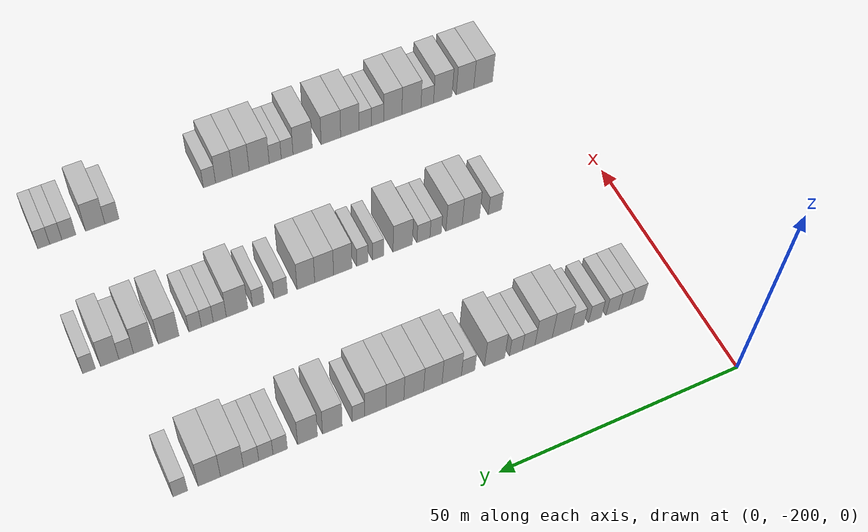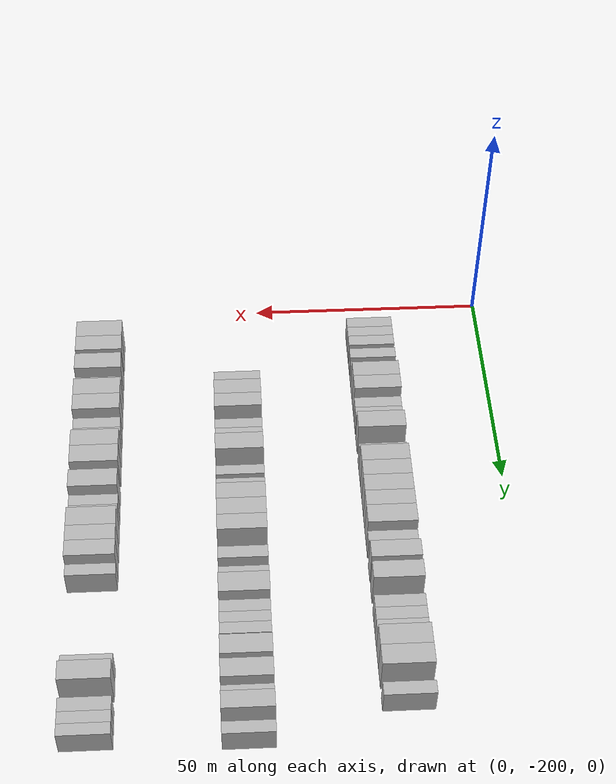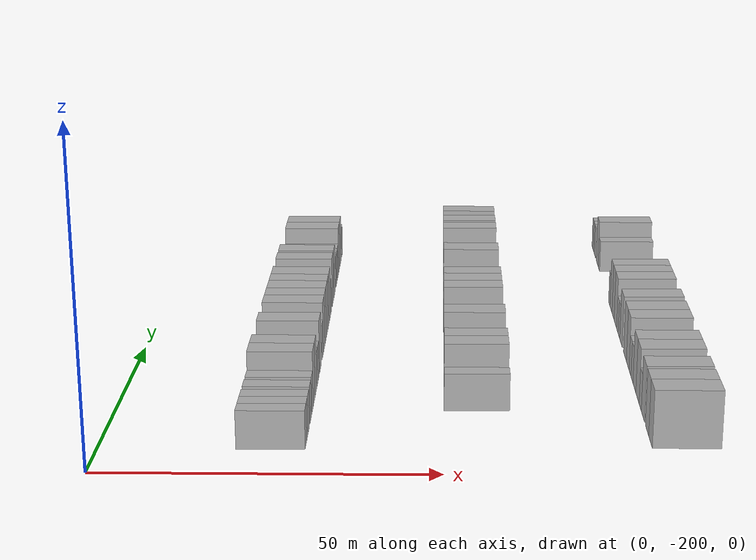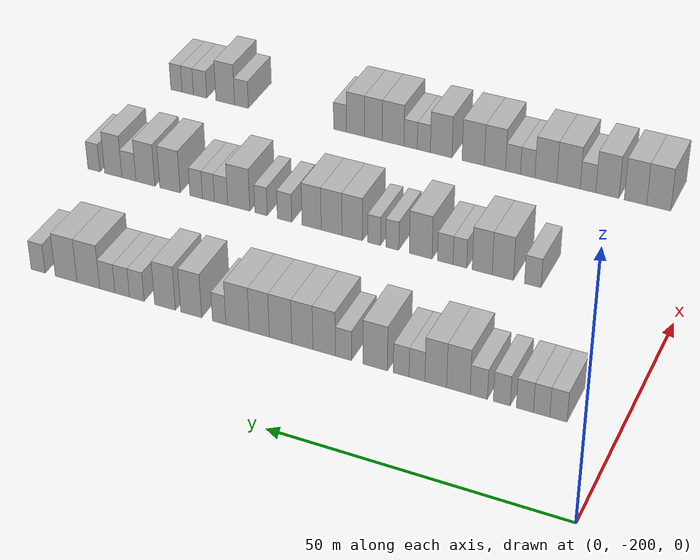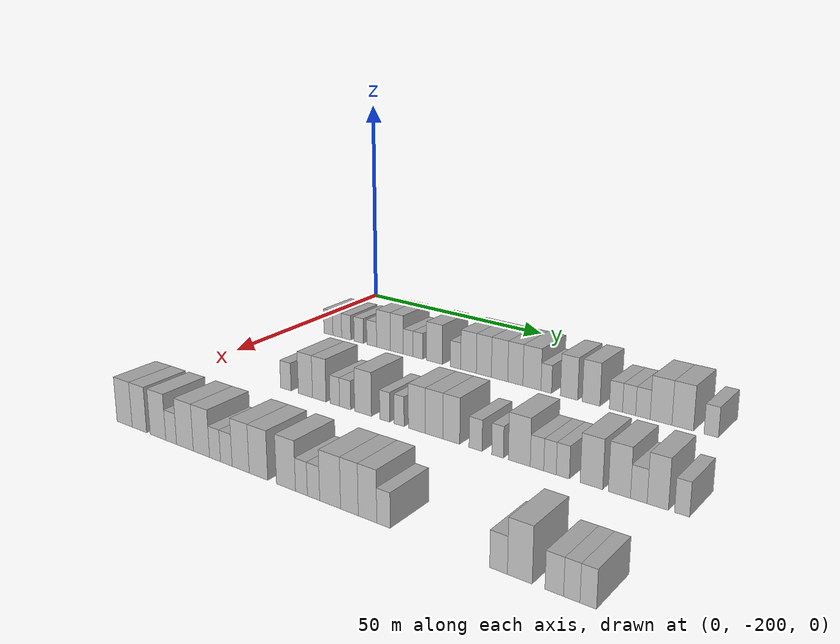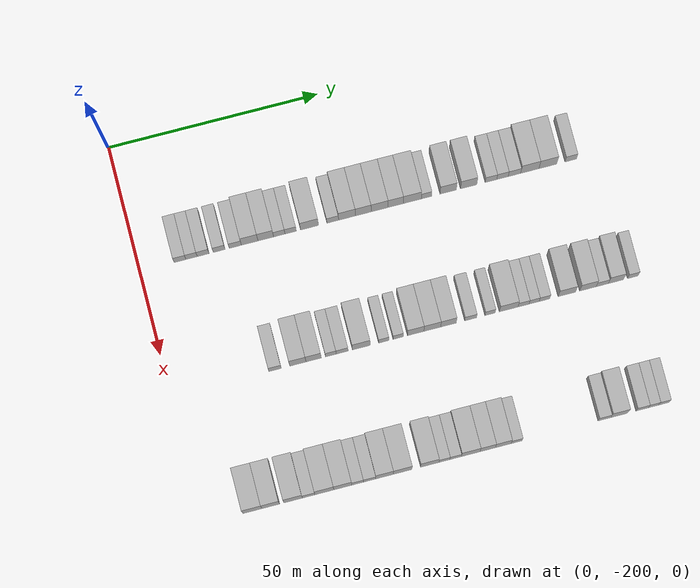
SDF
<sdf version="1.6">
 <world name="default">
  <model name="building_25">
   <static>1</static>
   <pose>25.0000 -190.3567 0 0.000000 0.000000 0.000000</pose>
   <link name="link">
    <pose>0 0 3.00 0 0 0</pose>
    <collision name="collision"><geometry><box><size>10.0000 2.8083 6.0000</size></box></geometry></collision>
    <visual name="visual">
     <cast_shadows>0</cast_shadows>
     <geometry><box><size>10.0000 2.8083 6.0000</size></box></geometry>
     <material>
      <script>
       <uri>model://HANNAS_wall/materials/scripts</uri>
       <uri>model://HANNAS_wall/materials/textures</uri>
       <name>vrc/HANNAS_wall</name>
      </script>
     </material>
    </visual>
   </link>
  </model>
  <model name="building_26">
   <static>1</static>
   <pose>25.0000 -187.6123 0 0.000000 0.000000 0.000000</pose>
   <link name="link">
    <pose>0 0 3.00 0 0 0</pose>
    <collision name="collision"><geometry><box><size>10.0000 2.6805 6.0000</size></box></geometry></collision>
    <visual name="visual">
     <cast_shadows>0</cast_shadows>
     <geometry><box><size>10.0000 2.6805 6.0000</size></box></geometry>
     <material>
      <script>
       <uri>model://HANNAS_wall/materials/scripts</uri>
       <uri>model://HANNAS_wall/materials/textures</uri>
       <name>vrc/HANNAS_wall</name>
      </script>
     </material>
    </visual>
   </link>
  </model>
  <model name="building_27">
   <static>1</static>
   <pose>25.0000 -184.8709 0 0.000000 0.000000 0.000000</pose>
   <link name="link">
    <pose>0 0 3.00 0 0 0</pose>
    <collision name="collision"><geometry><box><size>10.0000 2.8024 6.0000</size></box></geometry></collision>
    <visual name="visual">
     <cast_shadows>0</cast_shadows>
     <geometry><box><size>10.0000 2.8024 6.0000</size></box></geometry>
     <material>
      <script>
       <uri>model://HANNAS_wall/materials/scripts</uri>
       <uri>model://HANNAS_wall/materials/textures</uri>
       <name>vrc/HANNAS_wall</name>
      </script>
     </material>
    </visual>
   </link>
  </model>
  <model name="building_28">
   <static>1</static>
   <pose>25.0000 -181.0701 0 0.000000 0.000000 0.000000</pose>
   <link name="link">
    <pose>0 0 3.00 0 0 0</pose>
    <collision name="collision"><geometry><box><size>10.0000 2.7993 6.0000</size></box></geometry></collision>
    <visual name="visual">
     <cast_shadows>0</cast_shadows>
     <geometry><box><size>10.0000 2.7993 6.0000</size></box></geometry>
     <material>
      <script>
       <uri>model://HANNAS_wall/materials/scripts</uri>
       <uri>model://HANNAS_wall/materials/textures</uri>
       <name>vrc/HANNAS_wall</name>
      </script>
     </material>
    </visual>
   </link>
  </model>
  <model name="building_29">
   <static>1</static>
   <pose>25.0000 -177.2287 0 0.000000 0.000000 0.000000</pose>
   <link name="link">
    <pose>0 0 3.00 0 0 0</pose>
    <collision name="collision"><geometry><box><size>10.0000 2.8834 6.0000</size></box></geometry></collision>
    <visual name="visual">
     <cast_shadows>0</cast_shadows>
     <geometry><box><size>10.0000 2.8834 6.0000</size></box></geometry>
     <material>
      <script>
       <uri>model://HANNAS_wall/materials/scripts</uri>
       <uri>model://HANNAS_wall/materials/textures</uri>
       <name>vrc/HANNAS_wall</name>
      </script>
     </material>
    </visual>
   </link>
  </model>
  <model name="building_30">
   <static>1</static>
   <pose>25.0000 -173.8132 0 0.000000 0.000000 0.000000</pose>
   <link name="link">
    <pose>0 0 4.50 0 0 0</pose>
    <collision name="collision"><geometry><box><size>10.0000 3.9477 9.0000</size></box></geometry></collision>
    <visual name="visual">
     <cast_shadows>0</cast_shadows>
     <geometry><box><size>10.0000 3.9477 9.0000</size></box></geometry>
     <material>
      <script>
       <uri>model://HANNAS_wall/materials/scripts</uri>
       <uri>model://HANNAS_wall/materials/textures</uri>
       <name>vrc/HANNAS_wall</name>
      </script>
     </material>
    </visual>
   </link>
  </model>
  <model name="building_31">
   <static>1</static>
   <pose>25.0000 -169.9897 0 0.000000 0.000000 0.000000</pose>
   <link name="link">
    <pose>0 0 4.50 0 0 0</pose>
    <collision name="collision"><geometry><box><size>10.0000 3.6992 9.0000</size></box></geometry></collision>
    <visual name="visual">
     <cast_shadows>0</cast_shadows>
     <geometry><box><size>10.0000 3.6992 9.0000</size></box></geometry>
     <material>
      <script>
       <uri>model://HANNAS_wall/materials/scripts</uri>
       <uri>model://HANNAS_wall/materials/textures</uri>
       <name>vrc/HANNAS_wall</name>
      </script>
     </material>
    </visual>
   </link>
  </model>
  <model name="building_32">
   <static>1</static>
   <pose>25.0000 -166.7838 0 0.000000 0.000000 0.000000</pose>
   <link name="link">
    <pose>0 0 3.00 0 0 0</pose>
    <collision name="collision"><geometry><box><size>10.0000 2.7128 6.0000</size></box></geometry></collision>
    <visual name="visual">
     <cast_shadows>0</cast_shadows>
     <geometry><box><size>10.0000 2.7128 6.0000</size></box></geometry>
     <material>
      <script>
       <uri>model://HANNAS_wall/materials/scripts</uri>
       <uri>model://HANNAS_wall/materials/textures</uri>
       <name>vrc/HANNAS_wall</name>
      </script>
     </material>
    </visual>
   </link>
  </model>
  <model name="building_33">
   <static>1</static>
   <pose>25.0000 -164.0759 0 0.000000 0.000000 0.000000</pose>
   <link name="link">
    <pose>0 0 3.00 0 0 0</pose>
    <collision name="collision"><geometry><box><size>10.0000 2.7030 6.0000</size></box></geometry></collision>
    <visual name="visual">
     <cast_shadows>0</cast_shadows>
     <geometry><box><size>10.0000 2.7030 6.0000</size></box></geometry>
     <material>
      <script>
       <uri>model://HANNAS_wall/materials/scripts</uri>
       <uri>model://HANNAS_wall/materials/textures</uri>
       <name>vrc/HANNAS_wall</name>
      </script>
     </material>
    </visual>
   </link>
  </model>
  <model name="building_34">
   <static>1</static>
   <pose>25.0000 -159.5859 0 0.000000 0.000000 0.000000</pose>
   <link name="link">
    <pose>0 0 4.50 0 0 0</pose>
    <collision name="collision"><geometry><box><size>10.0000 4.2769 9.0000</size></box></geometry></collision>
    <visual name="visual">
     <cast_shadows>0</cast_shadows>
     <geometry><box><size>10.0000 4.2769 9.0000</size></box></geometry>
     <material>
      <script>
       <uri>model://HANNAS_wall/materials/scripts</uri>
       <uri>model://HANNAS_wall/materials/textures</uri>
       <name>vrc/HANNAS_wall</name>
      </script>
     </material>
    </visual>
   </link>
  </model>
  <model name="building_35">
   <static>1</static>
   <pose>25.0000 -154.0492 0 0.000000 0.000000 0.000000</pose>
   <link name="link">
    <pose>0 0 3.00 0 0 0</pose>
    <collision name="collision"><geometry><box><size>10.0000 2.7965 6.0000</size></box></geometry></collision>
    <visual name="visual">
     <cast_shadows>0</cast_shadows>
     <geometry><box><size>10.0000 2.7965 6.0000</size></box></geometry>
     <material>
      <script>
       <uri>model://HANNAS_wall/materials/scripts</uri>
       <uri>model://HANNAS_wall/materials/textures</uri>
       <name>vrc/HANNAS_wall</name>
      </script>
     </material>
    </visual>
   </link>
  </model>
  <model name="building_36">
   <static>1</static>
   <pose>25.0000 -150.6507 0 0.000000 0.000000 0.000000</pose>
   <link name="link">
    <pose>0 0 4.50 0 0 0</pose>
    <collision name="collision"><geometry><box><size>10.0000 4.0004 9.0000</size></box></geometry></collision>
    <visual name="visual">
     <cast_shadows>0</cast_shadows>
     <geometry><box><size>10.0000 4.0004 9.0000</size></box></geometry>
     <material>
      <script>
       <uri>model://HANNAS_wall/materials/scripts</uri>
       <uri>model://HANNAS_wall/materials/textures</uri>
       <name>vrc/HANNAS_wall</name>
      </script>
     </material>
    </visual>
   </link>
  </model>
  <model name="building_37">
   <static>1</static>
   <pose>25.0000 -146.7634 0 0.000000 0.000000 0.000000</pose>
   <link name="link">
    <pose>0 0 4.50 0 0 0</pose>
    <collision name="collision"><geometry><box><size>10.0000 3.7743 9.0000</size></box></geometry></collision>
    <visual name="visual">
     <cast_shadows>0</cast_shadows>
     <geometry><box><size>10.0000 3.7743 9.0000</size></box></geometry>
     <material>
      <script>
       <uri>model://HANNAS_wall/materials/scripts</uri>
       <uri>model://HANNAS_wall/materials/textures</uri>
       <name>vrc/HANNAS_wall</name>
      </script>
     </material>
    </visual>
   </link>
  </model>
  <model name="building_38">
   <static>1</static>
   <pose>25.0000 -142.8606 0 0.000000 0.000000 0.000000</pose>
   <link name="link">
    <pose>0 0 4.50 0 0 0</pose>
    <collision name="collision"><geometry><box><size>10.0000 4.0314 9.0000</size></box></geometry></collision>
    <visual name="visual">
     <cast_shadows>0</cast_shadows>
     <geometry><box><size>10.0000 4.0314 9.0000</size></box></geometry>
     <material>
      <script>
       <uri>model://HANNAS_wall/materials/scripts</uri>
       <uri>model://HANNAS_wall/materials/textures</uri>
       <name>vrc/HANNAS_wall</name>
      </script>
     </material>
    </visual>
   </link>
  </model>
  <model name="building_39">
   <static>1</static>
   <pose>25.0000 -139.0250 0 0.000000 0.000000 0.000000</pose>
   <link name="link">
    <pose>0 0 4.50 0 0 0</pose>
    <collision name="collision"><geometry><box><size>10.0000 3.6398 9.0000</size></box></geometry></collision>
    <visual name="visual">
     <cast_shadows>0</cast_shadows>
     <geometry><box><size>10.0000 3.6398 9.0000</size></box></geometry>
     <material>
      <script>
       <uri>model://HANNAS_wall/materials/scripts</uri>
       <uri>model://HANNAS_wall/materials/textures</uri>
       <name>vrc/HANNAS_wall</name>
      </script>
     </material>
    </visual>
   </link>
  </model>
  <model name="building_40">
   <static>1</static>
   <pose>25.0000 -135.0623 0 0.000000 0.000000 0.000000</pose>
   <link name="link">
    <pose>0 0 4.50 0 0 0</pose>
    <collision name="collision"><geometry><box><size>10.0000 4.2854 9.0000</size></box></geometry></collision>
    <visual name="visual">
     <cast_shadows>0</cast_shadows>
     <geometry><box><size>10.0000 4.2854 9.0000</size></box></geometry>
     <material>
      <script>
       <uri>model://HANNAS_wall/materials/scripts</uri>
       <uri>model://HANNAS_wall/materials/textures</uri>
       <name>vrc/HANNAS_wall</name>
      </script>
     </material>
    </visual>
   </link>
  </model>
  <model name="building_41">
   <static>1</static>
   <pose>25.0000 -131.6870 0 0.000000 0.000000 0.000000</pose>
   <link name="link">
    <pose>0 0 3.00 0 0 0</pose>
    <collision name="collision"><geometry><box><size>10.0000 2.4652 6.0000</size></box></geometry></collision>
    <visual name="visual">
     <cast_shadows>0</cast_shadows>
     <geometry><box><size>10.0000 2.4652 6.0000</size></box></geometry>
     <material>
      <script>
       <uri>model://HANNAS_wall/materials/scripts</uri>
       <uri>model://HANNAS_wall/materials/textures</uri>
       <name>vrc/HANNAS_wall</name>
      </script>
     </material>
    </visual>
   </link>
  </model>
  <model name="building_42">
   <static>1</static>
   <pose>25.0000 -126.5060 0 0.000000 0.000000 0.000000</pose>
   <link name="link">
    <pose>0 0 4.50 0 0 0</pose>
    <collision name="collision"><geometry><box><size>10.0000 3.8968 9.0000</size></box></geometry></collision>
    <visual name="visual">
     <cast_shadows>0</cast_shadows>
     <geometry><box><size>10.0000 3.8968 9.0000</size></box></geometry>
     <material>
      <script>
       <uri>model://HANNAS_wall/materials/scripts</uri>
       <uri>model://HANNAS_wall/materials/textures</uri>
       <name>vrc/HANNAS_wall</name>
      </script>
     </material>
    </visual>
   </link>
  </model>
  <model name="building_43">
   <static>1</static>
   <pose>25.0000 -121.6081 0 0.000000 0.000000 0.000000</pose>
   <link name="link">
    <pose>0 0 4.50 0 0 0</pose>
    <collision name="collision"><geometry><box><size>10.0000 3.8990 9.0000</size></box></geometry></collision>
    <visual name="visual">
     <cast_shadows>0</cast_shadows>
     <geometry><box><size>10.0000 3.8990 9.0000</size></box></geometry>
     <material>
      <script>
       <uri>model://HANNAS_wall/materials/scripts</uri>
       <uri>model://HANNAS_wall/materials/textures</uri>
       <name>vrc/HANNAS_wall</name>
      </script>
     </material>
    </visual>
   </link>
  </model>
  <model name="building_44">
   <static>1</static>
   <pose>25.0000 -116.2674 0 0.000000 0.000000 0.000000</pose>
   <link name="link">
    <pose>0 0 3.00 0 0 0</pose>
    <collision name="collision"><geometry><box><size>10.0000 2.7825 6.0000</size></box></geometry></collision>
    <visual name="visual">
     <cast_shadows>0</cast_shadows>
     <geometry><box><size>10.0000 2.7825 6.0000</size></box></geometry>
     <material>
      <script>
       <uri>model://HANNAS_wall/materials/scripts</uri>
       <uri>model://HANNAS_wall/materials/textures</uri>
       <name>vrc/HANNAS_wall</name>
      </script>
     </material>
    </visual>
   </link>
  </model>
  <model name="building_45">
   <static>1</static>
   <pose>25.0000 -113.4976 0 0.000000 0.000000 0.000000</pose>
   <link name="link">
    <pose>0 0 3.00 0 0 0</pose>
    <collision name="collision"><geometry><box><size>10.0000 2.7571 6.0000</size></box></geometry></collision>
    <visual name="visual">
     <cast_shadows>0</cast_shadows>
     <geometry><box><size>10.0000 2.7571 6.0000</size></box></geometry>
     <material>
      <script>
       <uri>model://HANNAS_wall/materials/scripts</uri>
       <uri>model://HANNAS_wall/materials/textures</uri>
       <name>vrc/HANNAS_wall</name>
      </script>
     </material>
    </visual>
   </link>
  </model>
  <model name="building_46">
   <static>1</static>
   <pose>25.0000 -110.6346 0 0.000000 0.000000 0.000000</pose>
   <link name="link">
    <pose>0 0 3.00 0 0 0</pose>
    <collision name="collision"><geometry><box><size>10.0000 2.9691 6.0000</size></box></geometry></collision>
    <visual name="visual">
     <cast_shadows>0</cast_shadows>
     <geometry><box><size>10.0000 2.9691 6.0000</size></box></geometry>
     <material>
      <script>
       <uri>model://HANNAS_wall/materials/scripts</uri>
       <uri>model://HANNAS_wall/materials/textures</uri>
       <name>vrc/HANNAS_wall</name>
      </script>
     </material>
    </visual>
   </link>
  </model>
  <model name="building_47">
   <static>1</static>
   <pose>25.0000 -106.9624 0 0.000000 0.000000 0.000000</pose>
   <link name="link">
    <pose>0 0 4.50 0 0 0</pose>
    <collision name="collision"><geometry><box><size>10.0000 4.3752 9.0000</size></box></geometry></collision>
    <visual name="visual">
     <cast_shadows>0</cast_shadows>
     <geometry><box><size>10.0000 4.3752 9.0000</size></box></geometry>
     <material>
      <script>
       <uri>model://HANNAS_wall/materials/scripts</uri>
       <uri>model://HANNAS_wall/materials/textures</uri>
       <name>vrc/HANNAS_wall</name>
      </script>
     </material>
    </visual>
   </link>
  </model>
  <model name="building_48">
   <static>1</static>
   <pose>25.0000 -102.6520 0 0.000000 0.000000 0.000000</pose>
   <link name="link">
    <pose>0 0 4.50 0 0 0</pose>
    <collision name="collision"><geometry><box><size>10.0000 4.2457 9.0000</size></box></geometry></collision>
    <visual name="visual">
     <cast_shadows>0</cast_shadows>
     <geometry><box><size>10.0000 4.2457 9.0000</size></box></geometry>
     <material>
      <script>
       <uri>model://HANNAS_wall/materials/scripts</uri>
       <uri>model://HANNAS_wall/materials/textures</uri>
       <name>vrc/HANNAS_wall</name>
      </script>
     </material>
    </visual>
   </link>
  </model>
  <model name="building_49">
   <static>1</static>
   <pose>25.0000 -97.1509 0 0.000000 0.000000 0.000000</pose>
   <link name="link">
    <pose>0 0 3.00 0 0 0</pose>
    <collision name="collision"><geometry><box><size>10.0000 2.7563 6.0000</size></box></geometry></collision>
    <visual name="visual">
     <cast_shadows>0</cast_shadows>
     <geometry><box><size>10.0000 2.7563 6.0000</size></box></geometry>
     <material>
      <script>
       <uri>model://HANNAS_wall/materials/scripts</uri>
       <uri>model://HANNAS_wall/materials/textures</uri>
       <name>vrc/HANNAS_wall</name>
      </script>
     </material>
    </visual>
   </link>
  </model>
  <model name="building_160">
   <static>1</static>
   <pose>55.0000 -175.4236 0 0.000000 0.000000 0.000000</pose>
   <link name="link">
    <pose>0 0 3.00 0 0 0</pose>
    <collision name="collision"><geometry><box><size>10.0000 2.9397 6.0000</size></box></geometry></collision>
    <visual name="visual">
     <cast_shadows>0</cast_shadows>
     <geometry><box><size>10.0000 2.9397 6.0000</size></box></geometry>
     <material>
      <script>
       <uri>model://HANNAS_wall/materials/scripts</uri>
       <uri>model://HANNAS_wall/materials/textures</uri>
       <name>vrc/HANNAS_wall</name>
      </script>
     </material>
    </visual>
   </link>
  </model>
  <model name="building_161">
   <static>1</static>
   <pose>55.0000 -170.0332 0 0.000000 0.000000 0.000000</pose>
   <link name="link">
    <pose>0 0 4.50 0 0 0</pose>
    <collision name="collision"><geometry><box><size>10.0000 3.8410 9.0000</size></box></geometry></collision>
    <visual name="visual">
     <cast_shadows>0</cast_shadows>
     <geometry><box><size>10.0000 3.8410 9.0000</size></box></geometry>
     <material>
      <script>
       <uri>model://HANNAS_wall/materials/scripts</uri>
       <uri>model://HANNAS_wall/materials/textures</uri>
       <name>vrc/HANNAS_wall</name>
      </script>
     </material>
    </visual>
   </link>
  </model>
  <model name="building_162">
   <static>1</static>
   <pose>55.0000 -166.3080 0 0.000000 0.000000 0.000000</pose>
   <link name="link">
    <pose>0 0 4.50 0 0 0</pose>
    <collision name="collision"><geometry><box><size>10.0000 3.6096 9.0000</size></box></geometry></collision>
    <visual name="visual">
     <cast_shadows>0</cast_shadows>
     <geometry><box><size>10.0000 3.6096 9.0000</size></box></geometry>
     <material>
      <script>
       <uri>model://HANNAS_wall/materials/scripts</uri>
       <uri>model://HANNAS_wall/materials/textures</uri>
       <name>vrc/HANNAS_wall</name>
      </script>
     </material>
    </visual>
   </link>
  </model>
  <model name="building_163">
   <static>1</static>
   <pose>55.0000 -162.2483 0 0.000000 0.000000 0.000000</pose>
   <link name="link">
    <pose>0 0 3.00 0 0 0</pose>
    <collision name="collision"><geometry><box><size>10.0000 2.5097 6.0000</size></box></geometry></collision>
    <visual name="visual">
     <cast_shadows>0</cast_shadows>
     <geometry><box><size>10.0000 2.5097 6.0000</size></box></geometry>
     <material>
      <script>
       <uri>model://HANNAS_wall/materials/scripts</uri>
       <uri>model://HANNAS_wall/materials/textures</uri>
       <name>vrc/HANNAS_wall</name>
      </script>
     </material>
    </visual>
   </link>
  </model>
  <model name="building_164">
   <static>1</static>
   <pose>55.0000 -159.5669 0 0.000000 0.000000 0.000000</pose>
   <link name="link">
    <pose>0 0 3.00 0 0 0</pose>
    <collision name="collision"><geometry><box><size>10.0000 2.8532 6.0000</size></box></geometry></collision>
    <visual name="visual">
     <cast_shadows>0</cast_shadows>
     <geometry><box><size>10.0000 2.8532 6.0000</size></box></geometry>
     <material>
      <script>
       <uri>model://HANNAS_wall/materials/scripts</uri>
       <uri>model://HANNAS_wall/materials/textures</uri>
       <name>vrc/HANNAS_wall</name>
      </script>
     </material>
    </visual>
   </link>
  </model>
  <model name="building_165">
   <static>1</static>
   <pose>55.0000 -155.0360 0 0.000000 0.000000 0.000000</pose>
   <link name="link">
    <pose>0 0 4.50 0 0 0</pose>
    <collision name="collision"><geometry><box><size>10.0000 4.2085 9.0000</size></box></geometry></collision>
    <visual name="visual">
     <cast_shadows>0</cast_shadows>
     <geometry><box><size>10.0000 4.2085 9.0000</size></box></geometry>
     <material>
      <script>
       <uri>model://HANNAS_wall/materials/scripts</uri>
       <uri>model://HANNAS_wall/materials/textures</uri>
       <name>vrc/HANNAS_wall</name>
      </script>
     </material>
    </visual>
   </link>
  </model>
  <model name="building_166">
   <static>1</static>
   <pose>55.0000 -149.7213 0 0.000000 0.000000 0.000000</pose>
   <link name="link">
    <pose>0 0 3.00 0 0 0</pose>
    <collision name="collision"><geometry><box><size>10.0000 2.4207 6.0000</size></box></geometry></collision>
    <visual name="visual">
     <cast_shadows>0</cast_shadows>
     <geometry><box><size>10.0000 2.4207 6.0000</size></box></geometry>
     <material>
      <script>
       <uri>model://HANNAS_wall/materials/scripts</uri>
       <uri>model://HANNAS_wall/materials/textures</uri>
       <name>vrc/HANNAS_wall</name>
      </script>
     </material>
    </visual>
   </link>
  </model>
  <model name="building_167">
   <static>1</static>
   <pose>55.0000 -146.3064 0 0.000000 0.000000 0.000000</pose>
   <link name="link">
    <pose>0 0 3.00 0 0 0</pose>
    <collision name="collision"><geometry><box><size>10.0000 2.4092 6.0000</size></box></geometry></collision>
    <visual name="visual">
     <cast_shadows>0</cast_shadows>
     <geometry><box><size>10.0000 2.4092 6.0000</size></box></geometry>
     <material>
      <script>
       <uri>model://HANNAS_wall/materials/scripts</uri>
       <uri>model://HANNAS_wall/materials/textures</uri>
       <name>vrc/HANNAS_wall</name>
      </script>
     </material>
    </visual>
   </link>
  </model>
  <model name="building_168">
   <static>1</static>
   <pose>55.0000 -142.1560 0 0.000000 0.000000 0.000000</pose>
   <link name="link">
    <pose>0 0 4.50 0 0 0</pose>
    <collision name="collision"><geometry><box><size>10.0000 3.8915 9.0000</size></box></geometry></collision>
    <visual name="visual">
     <cast_shadows>0</cast_shadows>
     <geometry><box><size>10.0000 3.8915 9.0000</size></box></geometry>
     <material>
      <script>
       <uri>model://HANNAS_wall/materials/scripts</uri>
       <uri>model://HANNAS_wall/materials/textures</uri>
       <name>vrc/HANNAS_wall</name>
      </script>
     </material>
    </visual>
   </link>
  </model>
  <model name="building_169">
   <static>1</static>
   <pose>55.0000 -138.2155 0 0.000000 0.000000 0.000000</pose>
   <link name="link">
    <pose>0 0 4.50 0 0 0</pose>
    <collision name="collision"><geometry><box><size>10.0000 3.9896 9.0000</size></box></geometry></collision>
    <visual name="visual">
     <cast_shadows>0</cast_shadows>
     <geometry><box><size>10.0000 3.9896 9.0000</size></box></geometry>
     <material>
      <script>
       <uri>model://HANNAS_wall/materials/scripts</uri>
       <uri>model://HANNAS_wall/materials/textures</uri>
       <name>vrc/HANNAS_wall</name>
      </script>
     </material>
    </visual>
   </link>
  </model>
  <model name="building_170">
   <static>1</static>
   <pose>55.0000 -134.3683 0 0.000000 0.000000 0.000000</pose>
   <link name="link">
    <pose>0 0 4.50 0 0 0</pose>
    <collision name="collision"><geometry><box><size>10.0000 3.7047 9.0000</size></box></geometry></collision>
    <visual name="visual">
     <cast_shadows>0</cast_shadows>
     <geometry><box><size>10.0000 3.7047 9.0000</size></box></geometry>
     <material>
      <script>
       <uri>model://HANNAS_wall/materials/scripts</uri>
       <uri>model://HANNAS_wall/materials/textures</uri>
       <name>vrc/HANNAS_wall</name>
      </script>
     </material>
    </visual>
   </link>
  </model>
  <model name="building_171">
   <static>1</static>
   <pose>55.0000 -129.1114 0 0.000000 0.000000 0.000000</pose>
   <link name="link">
    <pose>0 0 3.00 0 0 0</pose>
    <collision name="collision"><geometry><box><size>10.0000 2.8091 6.0000</size></box></geometry></collision>
    <visual name="visual">
     <cast_shadows>0</cast_shadows>
     <geometry><box><size>10.0000 2.8091 6.0000</size></box></geometry>
     <material>
      <script>
       <uri>model://HANNAS_wall/materials/scripts</uri>
       <uri>model://HANNAS_wall/materials/textures</uri>
       <name>vrc/HANNAS_wall</name>
      </script>
     </material>
    </visual>
   </link>
  </model>
  <model name="building_172">
   <static>1</static>
   <pose>55.0000 -124.4983 0 0.000000 0.000000 0.000000</pose>
   <link name="link">
    <pose>0 0 3.00 0 0 0</pose>
    <collision name="collision"><geometry><box><size>10.0000 2.4172 6.0000</size></box></geometry></collision>
    <visual name="visual">
     <cast_shadows>0</cast_shadows>
     <geometry><box><size>10.0000 2.4172 6.0000</size></box></geometry>
     <material>
      <script>
       <uri>model://HANNAS_wall/materials/scripts</uri>
       <uri>model://HANNAS_wall/materials/textures</uri>
       <name>vrc/HANNAS_wall</name>
      </script>
     </material>
    </visual>
   </link>
  </model>
  <model name="building_173">
   <static>1</static>
   <pose>55.0000 -120.0864 0 0.000000 0.000000 0.000000</pose>
   <link name="link">
    <pose>0 0 4.50 0 0 0</pose>
    <collision name="collision"><geometry><box><size>10.0000 4.4064 9.0000</size></box></geometry></collision>
    <visual name="visual">
     <cast_shadows>0</cast_shadows>
     <geometry><box><size>10.0000 4.4064 9.0000</size></box></geometry>
     <material>
      <script>
       <uri>model://HANNAS_wall/materials/scripts</uri>
       <uri>model://HANNAS_wall/materials/textures</uri>
       <name>vrc/HANNAS_wall</name>
      </script>
     </material>
    </visual>
   </link>
  </model>
  <model name="building_174">
   <static>1</static>
   <pose>55.0000 -116.5551 0 0.000000 0.000000 0.000000</pose>
   <link name="link">
    <pose>0 0 3.00 0 0 0</pose>
    <collision name="collision"><geometry><box><size>10.0000 2.6562 6.0000</size></box></geometry></collision>
    <visual name="visual">
     <cast_shadows>0</cast_shadows>
     <geometry><box><size>10.0000 2.6562 6.0000</size></box></geometry>
     <material>
      <script>
       <uri>model://HANNAS_wall/materials/scripts</uri>
       <uri>model://HANNAS_wall/materials/textures</uri>
       <name>vrc/HANNAS_wall</name>
      </script>
     </material>
    </visual>
   </link>
  </model>
  <model name="building_175">
   <static>1</static>
   <pose>55.0000 -114.0263 0 0.000000 0.000000 0.000000</pose>
   <link name="link">
    <pose>0 0 3.00 0 0 0</pose>
    <collision name="collision"><geometry><box><size>10.0000 2.4014 6.0000</size></box></geometry></collision>
    <visual name="visual">
     <cast_shadows>0</cast_shadows>
     <geometry><box><size>10.0000 2.4014 6.0000</size></box></geometry>
     <material>
      <script>
       <uri>model://HANNAS_wall/materials/scripts</uri>
       <uri>model://HANNAS_wall/materials/textures</uri>
       <name>vrc/HANNAS_wall</name>
      </script>
     </material>
    </visual>
   </link>
  </model>
  <model name="building_176">
   <static>1</static>
   <pose>55.0000 -111.5644 0 0.000000 0.000000 0.000000</pose>
   <link name="link">
    <pose>0 0 3.00 0 0 0</pose>
    <collision name="collision"><geometry><box><size>10.0000 2.5225 6.0000</size></box></geometry></collision>
    <visual name="visual">
     <cast_shadows>0</cast_shadows>
     <geometry><box><size>10.0000 2.5225 6.0000</size></box></geometry>
     <material>
      <script>
       <uri>model://HANNAS_wall/materials/scripts</uri>
       <uri>model://HANNAS_wall/materials/textures</uri>
       <name>vrc/HANNAS_wall</name>
      </script>
     </material>
    </visual>
   </link>
  </model>
  <model name="building_177">
   <static>1</static>
   <pose>55.0000 -106.2310 0 0.000000 0.000000 0.000000</pose>
   <link name="link">
    <pose>0 0 4.50 0 0 0</pose>
    <collision name="collision"><geometry><box><size>10.0000 4.1442 9.0000</size></box></geometry></collision>
    <visual name="visual">
     <cast_shadows>0</cast_shadows>
     <geometry><box><size>10.0000 4.1442 9.0000</size></box></geometry>
     <material>
      <script>
       <uri>model://HANNAS_wall/materials/scripts</uri>
       <uri>model://HANNAS_wall/materials/textures</uri>
       <name>vrc/HANNAS_wall</name>
      </script>
     </material>
    </visual>
   </link>
  </model>
  <model name="building_178">
   <static>1</static>
   <pose>55.0000 -101.1964 0 0.000000 0.000000 0.000000</pose>
   <link name="link">
    <pose>0 0 4.50 0 0 0</pose>
    <collision name="collision"><geometry><box><size>10.0000 3.9252 9.0000</size></box></geometry></collision>
    <visual name="visual">
     <cast_shadows>0</cast_shadows>
     <geometry><box><size>10.0000 3.9252 9.0000</size></box></geometry>
     <material>
      <script>
       <uri>model://HANNAS_wall/materials/scripts</uri>
       <uri>model://HANNAS_wall/materials/textures</uri>
       <name>vrc/HANNAS_wall</name>
      </script>
     </material>
    </visual>
   </link>
  </model>
  <model name="building_179">
   <static>1</static>
   <pose>55.0000 -97.7887 0 0.000000 0.000000 0.000000</pose>
   <link name="link">
    <pose>0 0 3.00 0 0 0</pose>
    <collision name="collision"><geometry><box><size>10.0000 2.8900 6.0000</size></box></geometry></collision>
    <visual name="visual">
     <cast_shadows>0</cast_shadows>
     <geometry><box><size>10.0000 2.8900 6.0000</size></box></geometry>
     <material>
      <script>
       <uri>model://HANNAS_wall/materials/scripts</uri>
       <uri>model://HANNAS_wall/materials/textures</uri>
       <name>vrc/HANNAS_wall</name>
      </script>
     </material>
    </visual>
   </link>
  </model>
  <model name="building_180">
   <static>1</static>
   <pose>55.0000 -94.5414 0 0.000000 0.000000 0.000000</pose>
   <link name="link">
    <pose>0 0 4.50 0 0 0</pose>
    <collision name="collision"><geometry><box><size>10.0000 3.6046 9.0000</size></box></geometry></collision>
    <visual name="visual">
     <cast_shadows>0</cast_shadows>
     <geometry><box><size>10.0000 3.6046 9.0000</size></box></geometry>
     <material>
      <script>
       <uri>model://HANNAS_wall/materials/scripts</uri>
       <uri>model://HANNAS_wall/materials/textures</uri>
       <name>vrc/HANNAS_wall</name>
      </script>
     </material>
    </visual>
   </link>
  </model>
  <model name="building_181">
   <static>1</static>
   <pose>55.0000 -90.4893 0 0.000000 0.000000 0.000000</pose>
   <link name="link">
    <pose>0 0 3.00 0 0 0</pose>
    <collision name="collision"><geometry><box><size>10.0000 2.4996 6.0000</size></box></geometry></collision>
    <visual name="visual">
     <cast_shadows>0</cast_shadows>
     <geometry><box><size>10.0000 2.4996 6.0000</size></box></geometry>
     <material>
      <script>
       <uri>model://HANNAS_wall/materials/scripts</uri>
       <uri>model://HANNAS_wall/materials/textures</uri>
       <name>vrc/HANNAS_wall</name>
      </script>
     </material>
    </visual>
   </link>
  </model>
  <model name="building_293">
   <static>1</static>
   <pose>85.0000 -188.3627 0 0.000000 0.000000 0.000000</pose>
   <link name="link">
    <pose>0 0 4.50 0 0 0</pose>
    <collision name="collision"><geometry><box><size>10.0000 4.4483 9.0000</size></box></geometry></collision>
    <visual name="visual">
     <cast_shadows>0</cast_shadows>
     <geometry><box><size>10.0000 4.4483 9.0000</size></box></geometry>
     <material>
      <script>
       <uri>model://HANNAS_wall/materials/scripts</uri>
       <uri>model://HANNAS_wall/materials/textures</uri>
       <name>vrc/HANNAS_wall</name>
      </script>
     </material>
    </visual>
   </link>
  </model>
  <model name="building_294">
   <static>1</static>
   <pose>85.0000 -184.0647 0 0.000000 0.000000 0.000000</pose>
   <link name="link">
    <pose>0 0 4.50 0 0 0</pose>
    <collision name="collision"><geometry><box><size>10.0000 4.1478 9.0000</size></box></geometry></collision>
    <visual name="visual">
     <cast_shadows>0</cast_shadows>
     <geometry><box><size>10.0000 4.1478 9.0000</size></box></geometry>
     <material>
      <script>
       <uri>model://HANNAS_wall/materials/scripts</uri>
       <uri>model://HANNAS_wall/materials/textures</uri>
       <name>vrc/HANNAS_wall</name>
      </script>
     </material>
    </visual>
   </link>
  </model>
  <model name="building_295">
   <static>1</static>
   <pose>85.0000 -178.8186 0 0.000000 0.000000 0.000000</pose>
   <link name="link">
    <pose>0 0 4.50 0 0 0</pose>
    <collision name="collision"><geometry><box><size>10.0000 4.3444 9.0000</size></box></geometry></collision>
    <visual name="visual">
     <cast_shadows>0</cast_shadows>
     <geometry><box><size>10.0000 4.3444 9.0000</size></box></geometry>
     <material>
      <script>
       <uri>model://HANNAS_wall/materials/scripts</uri>
       <uri>model://HANNAS_wall/materials/textures</uri>
       <name>vrc/HANNAS_wall</name>
      </script>
     </material>
    </visual>
   </link>
  </model>
  <model name="building_296">
   <static>1</static>
   <pose>85.0000 -175.1774 0 0.000000 0.000000 0.000000</pose>
   <link name="link">
    <pose>0 0 3.00 0 0 0</pose>
    <collision name="collision"><geometry><box><size>10.0000 2.9380 6.0000</size></box></geometry></collision>
    <visual name="visual">
     <cast_shadows>0</cast_shadows>
     <geometry><box><size>10.0000 2.9380 6.0000</size></box></geometry>
     <material>
      <script>
       <uri>model://HANNAS_wall/materials/scripts</uri>
       <uri>model://HANNAS_wall/materials/textures</uri>
       <name>vrc/HANNAS_wall</name>
      </script>
     </material>
    </visual>
   </link>
  </model>
  <model name="building_297">
   <static>1</static>
   <pose>85.0000 -171.4843 0 0.000000 0.000000 0.000000</pose>
   <link name="link">
    <pose>0 0 4.50 0 0 0</pose>
    <collision name="collision"><geometry><box><size>10.0000 4.4482 9.0000</size></box></geometry></collision>
    <visual name="visual">
     <cast_shadows>0</cast_shadows>
     <geometry><box><size>10.0000 4.4482 9.0000</size></box></geometry>
     <material>
      <script>
       <uri>model://HANNAS_wall/materials/scripts</uri>
       <uri>model://HANNAS_wall/materials/textures</uri>
       <name>vrc/HANNAS_wall</name>
      </script>
     </material>
    </visual>
   </link>
  </model>
  <model name="building_298">
   <static>1</static>
   <pose>85.0000 -167.1594 0 0.000000 0.000000 0.000000</pose>
   <link name="link">
    <pose>0 0 4.50 0 0 0</pose>
    <collision name="collision"><geometry><box><size>10.0000 4.2015 9.0000</size></box></geometry></collision>
    <visual name="visual">
     <cast_shadows>0</cast_shadows>
     <geometry><box><size>10.0000 4.2015 9.0000</size></box></geometry>
     <material>
      <script>
       <uri>model://HANNAS_wall/materials/scripts</uri>
       <uri>model://HANNAS_wall/materials/textures</uri>
       <name>vrc/HANNAS_wall</name>
      </script>
     </material>
    </visual>
   </link>
  </model>
  <model name="building_299">
   <static>1</static>
   <pose>85.0000 -163.6729 0 0.000000 0.000000 0.000000</pose>
   <link name="link">
    <pose>0 0 3.00 0 0 0</pose>
    <collision name="collision"><geometry><box><size>10.0000 2.7717 6.0000</size></box></geometry></collision>
    <visual name="visual">
     <cast_shadows>0</cast_shadows>
     <geometry><box><size>10.0000 2.7717 6.0000</size></box></geometry>
     <material>
      <script>
       <uri>model://HANNAS_wall/materials/scripts</uri>
       <uri>model://HANNAS_wall/materials/textures</uri>
       <name>vrc/HANNAS_wall</name>
      </script>
     </material>
    </visual>
   </link>
  </model>
  <model name="building_300">
   <static>1</static>
   <pose>85.0000 -160.8455 0 0.000000 0.000000 0.000000</pose>
   <link name="link">
    <pose>0 0 3.00 0 0 0</pose>
    <collision name="collision"><geometry><box><size>10.0000 2.8830 6.0000</size></box></geometry></collision>
    <visual name="visual">
     <cast_shadows>0</cast_shadows>
     <geometry><box><size>10.0000 2.8830 6.0000</size></box></geometry>
     <material>
      <script>
       <uri>model://HANNAS_wall/materials/scripts</uri>
       <uri>model://HANNAS_wall/materials/textures</uri>
       <name>vrc/HANNAS_wall</name>
      </script>
     </material>
    </visual>
   </link>
  </model>
  <model name="building_301">
   <static>1</static>
   <pose>85.0000 -157.3336 0 0.000000 0.000000 0.000000</pose>
   <link name="link">
    <pose>0 0 4.50 0 0 0</pose>
    <collision name="collision"><geometry><box><size>10.0000 4.1409 9.0000</size></box></geometry></collision>
    <visual name="visual">
     <cast_shadows>0</cast_shadows>
     <geometry><box><size>10.0000 4.1409 9.0000</size></box></geometry>
     <material>
      <script>
       <uri>model://HANNAS_wall/materials/scripts</uri>
       <uri>model://HANNAS_wall/materials/textures</uri>
       <name>vrc/HANNAS_wall</name>
      </script>
     </material>
    </visual>
   </link>
  </model>
  <model name="building_302">
   <static>1</static>
   <pose>85.0000 -153.0706 0 0.000000 0.000000 0.000000</pose>
   <link name="link">
    <pose>0 0 4.50 0 0 0</pose>
    <collision name="collision"><geometry><box><size>10.0000 4.3851 9.0000</size></box></geometry></collision>
    <visual name="visual">
     <cast_shadows>0</cast_shadows>
     <geometry><box><size>10.0000 4.3851 9.0000</size></box></geometry>
     <material>
      <script>
       <uri>model://HANNAS_wall/materials/scripts</uri>
       <uri>model://HANNAS_wall/materials/textures</uri>
       <name>vrc/HANNAS_wall</name>
      </script>
     </material>
    </visual>
   </link>
  </model>
  <model name="building_303">
   <static>1</static>
   <pose>85.0000 -146.7262 0 0.000000 0.000000 0.000000</pose>
   <link name="link">
    <pose>0 0 4.50 0 0 0</pose>
    <collision name="collision"><geometry><box><size>10.0000 4.3036 9.0000</size></box></geometry></collision>
    <visual name="visual">
     <cast_shadows>0</cast_shadows>
     <geometry><box><size>10.0000 4.3036 9.0000</size></box></geometry>
     <material>
      <script>
       <uri>model://HANNAS_wall/materials/scripts</uri>
       <uri>model://HANNAS_wall/materials/textures</uri>
       <name>vrc/HANNAS_wall</name>
      </script>
     </material>
    </visual>
   </link>
  </model>
  <model name="building_304">
   <static>1</static>
   <pose>85.0000 -143.2683 0 0.000000 0.000000 0.000000</pose>
   <link name="link">
    <pose>0 0 3.00 0 0 0</pose>
    <collision name="collision"><geometry><box><size>10.0000 2.6123 6.0000</size></box></geometry></collision>
    <visual name="visual">
     <cast_shadows>0</cast_shadows>
     <geometry><box><size>10.0000 2.6123 6.0000</size></box></geometry>
     <material>
      <script>
       <uri>model://HANNAS_wall/materials/scripts</uri>
       <uri>model://HANNAS_wall/materials/textures</uri>
       <name>vrc/HANNAS_wall</name>
      </script>
     </material>
    </visual>
   </link>
  </model>
  <model name="building_305">
   <static>1</static>
   <pose>85.0000 -140.6268 0 0.000000 0.000000 0.000000</pose>
   <link name="link">
    <pose>0 0 3.00 0 0 0</pose>
    <collision name="collision"><geometry><box><size>10.0000 2.6706 6.0000</size></box></geometry></collision>
    <visual name="visual">
     <cast_shadows>0</cast_shadows>
     <geometry><box><size>10.0000 2.6706 6.0000</size></box></geometry>
     <material>
      <script>
       <uri>model://HANNAS_wall/materials/scripts</uri>
       <uri>model://HANNAS_wall/materials/textures</uri>
       <name>vrc/HANNAS_wall</name>
      </script>
     </material>
    </visual>
   </link>
  </model>
  <model name="building_306">
   <static>1</static>
   <pose>85.0000 -137.0868 0 0.000000 0.000000 0.000000</pose>
   <link name="link">
    <pose>0 0 4.50 0 0 0</pose>
    <collision name="collision"><geometry><box><size>10.0000 4.4093 9.0000</size></box></geometry></collision>
    <visual name="visual">
     <cast_shadows>0</cast_shadows>
     <geometry><box><size>10.0000 4.4093 9.0000</size></box></geometry>
     <material>
      <script>
       <uri>model://HANNAS_wall/materials/scripts</uri>
       <uri>model://HANNAS_wall/materials/textures</uri>
       <name>vrc/HANNAS_wall</name>
      </script>
     </material>
    </visual>
   </link>
  </model>
  <model name="building_307">
   <static>1</static>
   <pose>85.0000 -133.0686 0 0.000000 0.000000 0.000000</pose>
   <link name="link">
    <pose>0 0 4.50 0 0 0</pose>
    <collision name="collision"><geometry><box><size>10.0000 3.6271 9.0000</size></box></geometry></collision>
    <visual name="visual">
     <cast_shadows>0</cast_shadows>
     <geometry><box><size>10.0000 3.6271 9.0000</size></box></geometry>
     <material>
      <script>
       <uri>model://HANNAS_wall/materials/scripts</uri>
       <uri>model://HANNAS_wall/materials/textures</uri>
       <name>vrc/HANNAS_wall</name>
      </script>
     </material>
    </visual>
   </link>
  </model>
  <model name="building_308">
   <static>1</static>
   <pose>85.0000 -129.4060 0 0.000000 0.000000 0.000000</pose>
   <link name="link">
    <pose>0 0 4.50 0 0 0</pose>
    <collision name="collision"><geometry><box><size>10.0000 3.6981 9.0000</size></box></geometry></collision>
    <visual name="visual">
     <cast_shadows>0</cast_shadows>
     <geometry><box><size>10.0000 3.6981 9.0000</size></box></geometry>
     <material>
      <script>
       <uri>model://HANNAS_wall/materials/scripts</uri>
       <uri>model://HANNAS_wall/materials/textures</uri>
       <name>vrc/HANNAS_wall</name>
      </script>
     </material>
    </visual>
   </link>
  </model>
  <model name="building_309">
   <static>1</static>
   <pose>85.0000 -126.2388 0 0.000000 0.000000 0.000000</pose>
   <link name="link">
    <pose>0 0 3.00 0 0 0</pose>
    <collision name="collision"><geometry><box><size>10.0000 2.6365 6.0000</size></box></geometry></collision>
    <visual name="visual">
     <cast_shadows>0</cast_shadows>
     <geometry><box><size>10.0000 2.6365 6.0000</size></box></geometry>
     <material>
      <script>
       <uri>model://HANNAS_wall/materials/scripts</uri>
       <uri>model://HANNAS_wall/materials/textures</uri>
       <name>vrc/HANNAS_wall</name>
      </script>
     </material>
    </visual>
   </link>
  </model>
  <model name="building_310">
   <static>1</static>
   <pose>85.0000 -105.4896 0 0.000000 0.000000 0.000000</pose>
   <link name="link">
    <pose>0 0 3.00 0 0 0</pose>
    <collision name="collision"><geometry><box><size>10.0000 2.9539 6.0000</size></box></geometry></collision>
    <visual name="visual">
     <cast_shadows>0</cast_shadows>
     <geometry><box><size>10.0000 2.9539 6.0000</size></box></geometry>
     <material>
      <script>
       <uri>model://HANNAS_wall/materials/scripts</uri>
       <uri>model://HANNAS_wall/materials/textures</uri>
       <name>vrc/HANNAS_wall</name>
      </script>
     </material>
    </visual>
   </link>
  </model>
  <model name="building_311">
   <static>1</static>
   <pose>85.0000 -101.9962 0 0.000000 0.000000 0.000000</pose>
   <link name="link">
    <pose>0 0 4.50 0 0 0</pose>
    <collision name="collision"><geometry><box><size>10.0000 4.0330 9.0000</size></box></geometry></collision>
    <visual name="visual">
     <cast_shadows>0</cast_shadows>
     <geometry><box><size>10.0000 4.0330 9.0000</size></box></geometry>
     <material>
      <script>
       <uri>model://HANNAS_wall/materials/scripts</uri>
       <uri>model://HANNAS_wall/materials/textures</uri>
       <name>vrc/HANNAS_wall</name>
      </script>
     </material>
    </visual>
   </link>
  </model>
  <model name="building_312">
   <static>1</static>
   <pose>85.0000 -96.5354 0 0.000000 0.000000 0.000000</pose>
   <link name="link">
    <pose>0 0 3.00 0 0 0</pose>
    <collision name="collision"><geometry><box><size>10.0000 2.8886 6.0000</size></box></geometry></collision>
    <visual name="visual">
     <cast_shadows>0</cast_shadows>
     <geometry><box><size>10.0000 2.8886 6.0000</size></box></geometry>
     <material>
      <script>
       <uri>model://HANNAS_wall/materials/scripts</uri>
       <uri>model://HANNAS_wall/materials/textures</uri>
       <name>vrc/HANNAS_wall</name>
      </script>
     </material>
    </visual>
   </link>
  </model>
  <model name="building_313">
   <static>1</static>
   <pose>85.0000 -93.8513 0 0.000000 0.000000 0.000000</pose>
   <link name="link">
    <pose>0 0 3.00 0 0 0</pose>
    <collision name="collision"><geometry><box><size>10.0000 2.4795 6.0000</size></box></geometry></collision>
    <visual name="visual">
     <cast_shadows>0</cast_shadows>
     <geometry><box><size>10.0000 2.4795 6.0000</size></box></geometry>
     <material>
      <script>
       <uri>model://HANNAS_wall/materials/scripts</uri>
       <uri>model://HANNAS_wall/materials/textures</uri>
       <name>vrc/HANNAS_wall</name>
      </script>
     </material>
    </visual>
   </link>
  </model>
  <model name="building_314">
   <static>1</static>
   <pose>85.0000 -91.3762 0 0.000000 0.000000 0.000000</pose>
   <link name="link">
    <pose>0 0 3.00 0 0 0</pose>
    <collision name="collision"><geometry><box><size>10.0000 2.4707 6.0000</size></box></geometry></collision>
    <visual name="visual">
     <cast_shadows>0</cast_shadows>
     <geometry><box><size>10.0000 2.4707 6.0000</size></box></geometry>
     <material>
      <script>
       <uri>model://HANNAS_wall/materials/scripts</uri>
       <uri>model://HANNAS_wall/materials/textures</uri>
       <name>vrc/HANNAS_wall</name>
      </script>
     </material>
    </visual>
   </link>
  </model>
 </world>
</sdf>
